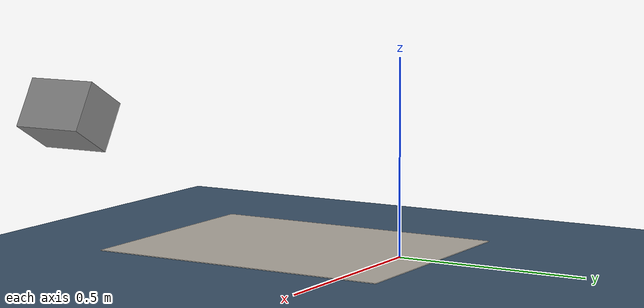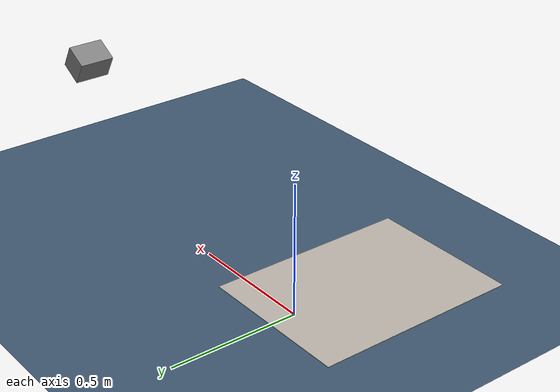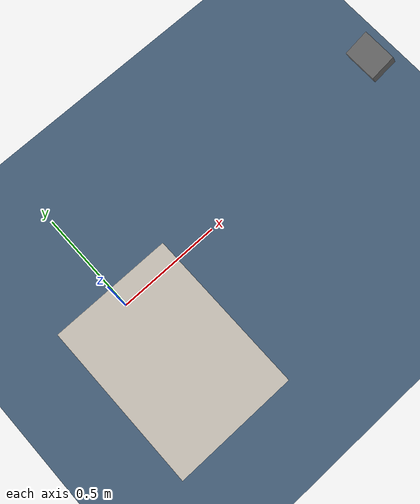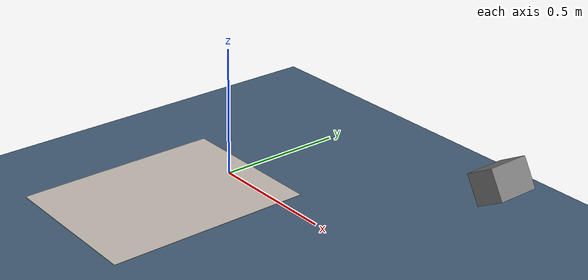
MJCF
<mujoco model="calib scene">
  <statistic center="0.2 0 0.4" extent=".65"/>
  <compiler angle="radian" autolimits="true" meshdir="assets"/>

  <asset>
    <texture name="charuco_texture" type="2d" file="C:\\Users\\srkia\\Desktop\\xArmSim\\xArmMujoco\\charuco_board2.png"/>
    <material name="charuco_texture" texture="charuco_texture" shininess="0.1" specular="0.1"/>
  </asset>

  <visual>
    <headlight diffuse="0.6 0.6 0.6" ambient="0.3 0.3 0.3" specular="0 0 0"/>
    <rgba haze="0.15 0.25 0.35 1"/>
    <global azimuth="150" elevation="-20" offwidth="2000" offheight="2000"/>
  </visual>

  <asset>
    <texture type="skybox" builtin="gradient" rgb1="0.3 0.5 0.7" rgb2="0 0 0" width="512" height="3072"/>
    <texture type="2d" name="groundplane" builtin="checker" rgb1="0.2 0.3 0.4" rgb2="0.3 0.4 0.5"
      markrgb="0.8 0.8 0.8" width="300" height="300"/>
    <material name="groundplane" texture="groundplane" texuniform="true" texrepeat="5 5" reflectance="0.0"/>
  </asset>

  <worldbody>
    <light pos="0 0 1.5" dir="0 0 -1" directional="true"/>
    <geom name="floor" size="0 0 0.05" type="plane" material="groundplane"/>
  </worldbody>

  <worldbody>
      <body pos="1.3 0.0 0.5"  euler="0.0 1.05 1.57">
        <geom type="box" size=".07 .05 .05"/>
        <camera name="my_camera" pos="0.0 0.0 0.0" fovy="60" mode="fixed"/>
      </body>
  </worldbody>

  <worldbody>
    <body>
      <joint type="free" name="board_joint"/>
      <geom name="board" type="box" size="0.3 0.4 0.001" material="charuco_texture" pos="0.0 -0.3 0.0"/>
    </body>
  </worldbody>

</mujoco>
